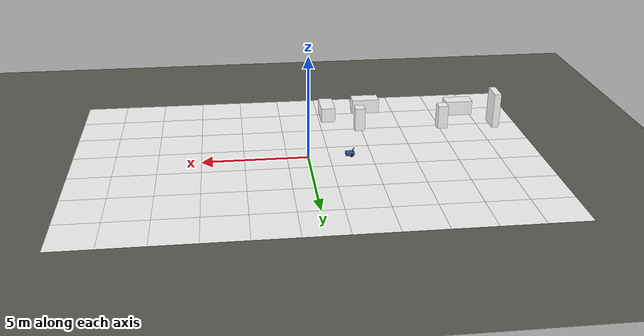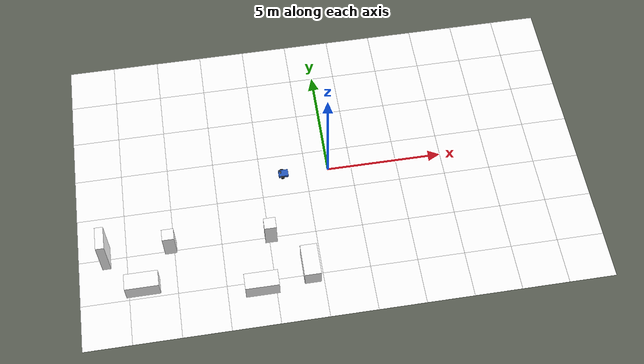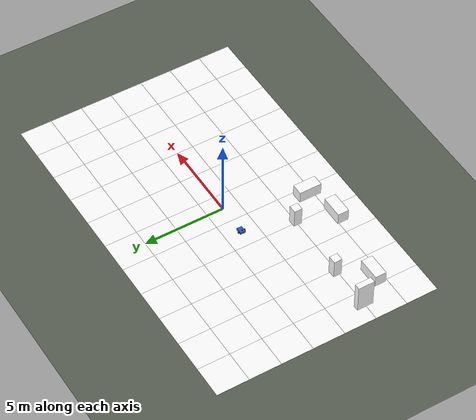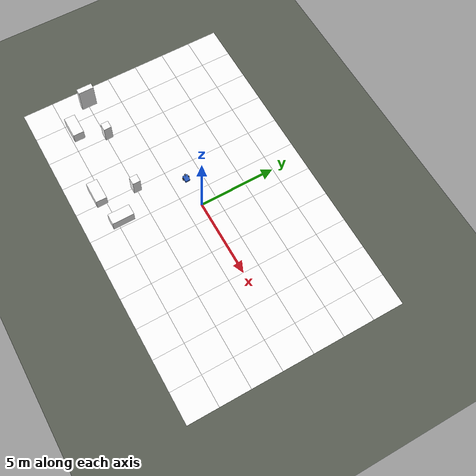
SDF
<sdf version="1.9">
 <world name="office_0">
  <model name="ground_plane">
   <static>true</static>
   <link name="link">
    <collision name="collision">
     <geometry><plane><normal>0 0 1</normal><size>300.000 300.000</size></plane></geometry>
     <surface><friction><ode><mu>1.0</mu><mu2>1.0</mu2></ode></friction></surface>
    </collision>
    <visual name="visual">
     <geometry><plane><normal>0 0 1</normal><size>300.000 300.000</size></plane></geometry>
     <material>
      <ambient>0.350 0.370 0.330 1</ambient>
      <diffuse>0.350 0.370 0.330 1</diffuse>
      <specular>0.08 0.08 0.08 1</specular>
     </material>
    </visual>
   </link>
  </model>
  <model name="floor_1">
   <static>true</static>
   <link name="link">
    <visual name="v0">
     <pose>-10.000 -6.000 0.005 0.0000 0.0000 0.0000</pose>
     <geometry><plane><normal>0 0 1</normal><size>2.000 2.000</size></plane></geometry>
     <material>
      <ambient>1.000 1.000 1.000 1</ambient>
      <diffuse>1.000 1.000 1.000 1</diffuse>
      <specular>0.08 0.08 0.08 1</specular>
      <pbr>
       <metal>
        <albedo_map>model://omnivla_textures/materials/textures/paving.png</albedo_map>
        <roughness>0.95</roughness>
        <metalness>0.0</metalness>
       </metal>
      </pbr>
     </material>
    </visual>
    <visual name="v1">
     <pose>-10.000 -4.000 0.005 0.0000 0.0000 0.0000</pose>
     <geometry><plane><normal>0 0 1</normal><size>2.000 2.000</size></plane></geometry>
     <material>
      <ambient>1.000 1.000 1.000 1</ambient>
      <diffuse>1.000 1.000 1.000 1</diffuse>
      <specular>0.08 0.08 0.08 1</specular>
      <pbr>
       <metal>
        <albedo_map>model://omnivla_textures/materials/textures/paving.png</albedo_map>
        <roughness>0.95</roughness>
        <metalness>0.0</metalness>
       </metal>
      </pbr>
     </material>
    </visual>
    <visual name="v2">
     <pose>-10.000 -2.000 0.005 0.0000 0.0000 0.0000</pose>
     <geometry><plane><normal>0 0 1</normal><size>2.000 2.000</size></plane></geometry>
     <material>
      <ambient>1.000 1.000 1.000 1</ambient>
      <diffuse>1.000 1.000 1.000 1</diffuse>
      <specular>0.08 0.08 0.08 1</specular>
      <pbr>
       <metal>
        <albedo_map>model://omnivla_textures/materials/textures/paving.png</albedo_map>
        <roughness>0.95</roughness>
        <metalness>0.0</metalness>
       </metal>
      </pbr>
     </material>
    </visual>
    <visual name="v3">
     <pose>-10.000 0.000 0.005 0.0000 0.0000 0.0000</pose>
     <geometry><plane><normal>0 0 1</normal><size>2.000 2.000</size></plane></geometry>
     <material>
      <ambient>1.000 1.000 1.000 1</ambient>
      <diffuse>1.000 1.000 1.000 1</diffuse>
      <specular>0.08 0.08 0.08 1</specular>
      <pbr>
       <metal>
        <albedo_map>model://omnivla_textures/materials/textures/tile_floor_dark.png</albedo_map>
        <roughness>0.95</roughness>
        <metalness>0.0</metalness>
       </metal>
      </pbr>
     </material>
    </visual>
    <visual name="v4">
     <pose>-10.000 2.000 0.005 0.0000 0.0000 0.0000</pose>
     <geometry><plane><normal>0 0 1</normal><size>2.000 2.000</size></plane></geometry>
     <material>
      <ambient>1.000 1.000 1.000 1</ambient>
      <diffuse>1.000 1.000 1.000 1</diffuse>
      <specular>0.08 0.08 0.08 1</specular>
      <pbr>
       <metal>
        <albedo_map>model://omnivla_textures/materials/textures/carpet_blue.png</albedo_map>
        <roughness>0.95</roughness>
        <metalness>0.0</metalness>
       </metal>
      </pbr>
     </material>
    </visual>
    <visual name="v5">
     <pose>-10.000 4.000 0.005 0.0000 0.0000 0.0000</pose>
     <geometry><plane><normal>0 0 1</normal><size>2.000 2.000</size></plane></geometry>
     <material>
      <ambient>1.000 1.000 1.000 1</ambient>
      <diffuse>1.000 1.000 1.000 1</diffuse>
      <specular>0.08 0.08 0.08 1</specular>
      <pbr>
       <metal>
        <albedo_map>model://omnivla_textures/materials/textures/carpet_blue.png</albedo_map>
        <roughness>0.95</roughness>
        <metalness>0.0</metalness>
       </metal>
      </pbr>
     </material>
    </visual>
    <visual name="v6">
     <pose>-10.000 6.000 0.005 0.0000 0.0000 0.0000</pose>
     <geometry><plane><normal>0 0 1</normal><size>2.000 2.000</size></plane></geometry>
     <material>
      <ambient>1.000 1.000 1.000 1</ambient>
      <diffuse>1.000 1.000 1.000 1</diffuse>
      <specular>0.08 0.08 0.08 1</specular>
      <pbr>
       <metal>
        <albedo_map>model://omnivla_textures/materials/textures/carpet_blue.png</albedo_map>
        <roughness>0.95</roughness>
        <metalness>0.0</metalness>
       </metal>
      </pbr>
     </material>
    </visual>
    <visual name="v7">
     <pose>-8.000 -6.000 0.005 0.0000 0.0000 0.0000</pose>
     <geometry><plane><normal>0 0 1</normal><size>2.000 2.000</size></plane></geometry>
     <material>
      <ambient>1.000 1.000 1.000 1</ambient>
      <diffuse>1.000 1.000 1.000 1</diffuse>
      <specular>0.08 0.08 0.08 1</specular>
      <pbr>
       <metal>
        <albedo_map>model://omnivla_textures/materials/textures/paving.png</albedo_map>
        <roughness>0.95</roughness>
        <metalness>0.0</metalness>
       </metal>
      </pbr>
     </material>
    </visual>
    <visual name="v8">
     <pose>-8.000 -4.000 0.005 0.0000 0.0000 0.0000</pose>
     <geometry><plane><normal>0 0 1</normal><size>2.000 2.000</size></plane></geometry>
     <material>
      <ambient>1.000 1.000 1.000 1</ambient>
      <diffuse>1.000 1.000 1.000 1</diffuse>
      <specular>0.08 0.08 0.08 1</specular>
      <pbr>
       <metal>
        <albedo_map>model://omnivla_textures/materials/textures/paving.png</albedo_map>
        <roughness>0.95</roughness>
        <metalness>0.0</metalness>
       </metal>
      </pbr>
     </material>
    </visual>
    <visual name="v9">
     <pose>-8.000 -2.000 0.005 0.0000 0.0000 0.0000</pose>
     <geometry><plane><normal>0 0 1</normal><size>2.000 2.000</size></plane></geometry>
     <material>
      <ambient>1.000 1.000 1.000 1</ambient>
      <diffuse>1.000 1.000 1.000 1</diffuse>
      <specular>0.08 0.08 0.08 1</specular>
      <pbr>
       <metal>
        <albedo_map>model://omnivla_textures/materials/textures/paving.png</albedo_map>
        <roughness>0.95</roughness>
        <metalness>0.0</metalness>
       </metal>
      </pbr>
     </material>
    </visual>
    <visual name="v10">
     <pose>-8.000 0.000 0.005 0.0000 0.0000 0.0000</pose>
     <geometry><plane><normal>0 0 1</normal><size>2.000 2.000</size></plane></geometry>
     <material>
      <ambient>1.000 1.000 1.000 1</ambient>
      <diffuse>1.000 1.000 1.000 1</diffuse>
      <specular>0.08 0.08 0.08 1</specular>
      <pbr>
       <metal>
        <albedo_map>model://omnivla_textures/materials/textures/tile_floor_dark.png</albedo_map>
        <roughness>0.95</roughness>
        <metalness>0.0</metalness>
       </metal>
      </pbr>
     </material>
    </visual>
    <visual name="v11">
     <pose>-8.000 2.000 0.005 0.0000 0.0000 0.0000</pose>
     <geometry><plane><normal>0 0 1</normal><size>2.000 2.000</size></plane></geometry>
     <material>
      <ambient>1.000 1.000 1.000 1</ambient>
      <diffuse>1.000 1.000 1.000 1</diffuse>
      <specular>0.08 0.08 0.08 1</specular>
      <pbr>
       <metal>
        <albedo_map>model://omnivla_textures/materials/textures/carpet_blue.png</albedo_map>
        <roughness>0.95</roughness>
        <metalness>0.0</metalness>
       </metal>
      </pbr>
     </material>
    </visual>
    <visual name="v12">
     <pose>-8.000 4.000 0.005 0.0000 0.0000 0.0000</pose>
     <geometry><plane><normal>0 0 1</normal><size>2.000 2.000</size></plane></geometry>
     <material>
      <ambient>1.000 1.000 1.000 1</ambient>
      <diffuse>1.000 1.000 1.000 1</diffuse>
      <specular>0.08 0.08 0.08 1</specular>
      <pbr>
       <metal>
        <albedo_map>model://omnivla_textures/materials/textures/carpet_blue.png</albedo_map>
        <roughness>0.95</roughness>
        <metalness>0.0</metalness>
       </metal>
      </pbr>
     </material>
    </visual>
    <visual name="v13">
     <pose>-8.000 6.000 0.005 0.0000 0.0000 0.0000</pose>
     <geometry><plane><normal>0 0 1</normal><size>2.000 2.000</size></plane></geometry>
     <material>
      <ambient>1.000 1.000 1.000 1</ambient>
      <diffuse>1.000 1.000 1.000 1</diffuse>
      <specular>0.08 0.08 0.08 1</specular>
      <pbr>
       <metal>
        <albedo_map>model://omnivla_textures/materials/textures/carpet_blue.png</albedo_map>
        <roughness>0.95</roughness>
        <metalness>0.0</metalness>
       </metal>
      </pbr>
     </material>
    </visual>
    <visual name="v14">
     <pose>-6.000 -6.000 0.005 0.0000 0.0000 0.0000</pose>
     <geometry><plane><normal>0 0 1</normal><size>2.000 2.000</size></plane></geometry>
     <material>
      <ambient>1.000 1.000 1.000 1</ambient>
      <diffuse>1.000 1.000 1.000 1</diffuse>
      <specular>0.08 0.08 0.08 1</specular>
      <pbr>
       <metal>
        <albedo_map>model://omnivla_textures/materials/textures/paving.png</albedo_map>
        <roughness>0.95</roughness>
        <metalness>0.0</metalness>
       </metal>
      </pbr>
     </material>
    </visual>
    <visual name="v15">
     <pose>-6.000 -4.000 0.005 0.0000 0.0000 0.0000</pose>
     <geometry><plane><normal>0 0 1</normal><size>2.000 2.000</size></plane></geometry>
     <material>
      <ambient>1.000 1.000 1.000 1</ambient>
      <diffuse>1.000 1.000 1.000 1</diffuse>
      <specular>0.08 0.08 0.08 1</specular>
      <pbr>
       <metal>
        <albedo_map>model://omnivla_textures/materials/textures/paving.png</albedo_map>
        <roughness>0.95</roughness>
        <metalness>0.0</metalness>
       </metal>
      </pbr>
     </material>
    </visual>
    <visual name="v16">
     <pose>-6.000 -2.000 0.005 0.0000 0.0000 0.0000</pose>
     <geometry><plane><normal>0 0 1</normal><size>2.000 2.000</size></plane></geometry>
     <material>
      <ambient>1.000 1.000 1.000 1</ambient>
      <diffuse>1.000 1.000 1.000 1</diffuse>
      <specular>0.08 0.08 0.08 1</specular>
      <pbr>
       <metal>
        <albedo_map>model://omnivla_textures/materials/textures/paving.png</albedo_map>
        <roughness>0.95</roughness>
        <metalness>0.0</metalness>
       </metal>
      </pbr>
     </material>
    </visual>
    <visual name="v17">
     <pose>-6.000 0.000 0.005 0.0000 0.0000 0.0000</pose>
     <geometry><plane><normal>0 0 1</normal><size>2.000 2.000</size></plane></geometry>
     <material>
      <ambient>1.000 1.000 1.000 1</ambient>
      <diffuse>1.000 1.000 1.000 1</diffuse>
      <specular>0.08 0.08 0.08 1</specular>
      <pbr>
       <metal>
        <albedo_map>model://omnivla_textures/materials/textures/tile_floor_dark.png</albedo_map>
        <roughness>0.95</roughness>
        <metalness>0.0</metalness>
       </metal>
      </pbr>
     </material>
    </visual>
    <visual name="v18">
     <pose>-6.000 2.000 0.005 0.0000 0.0000 0.0000</pose>
     <geometry><plane><normal>0 0 1</normal><size>2.000 2.000</size></plane></geometry>
     <material>
      <ambient>1.000 1.000 1.000 1</ambient>
      <diffuse>1.000 1.000 1.000 1</diffuse>
      <specular>0.08 0.08 0.08 1</specular>
      <pbr>
       <metal>
        <albedo_map>model://omnivla_textures/materials/textures/carpet_blue.png</albedo_map>
        <roughness>0.95</roughness>
        <metalness>0.0</metalness>
       </metal>
      </pbr>
     </material>
    </visual>
    <visual name="v19">
     <pose>-6.000 4.000 0.005 0.0000 0.0000 0.0000</pose>
     <geometry><plane><normal>0 0 1</normal><size>2.000 2.000</size></plane></geometry>
     <material>
      <ambient>1.000 1.000 1.000 1</ambient>
      <diffuse>1.000 1.000 1.000 1</diffuse>
      <specular>0.08 0.08 0.08 1</specular>
      <pbr>
       <metal>
        <albedo_map>model://omnivla_textures/materials/textures/carpet_blue.png</albedo_map>
        <roughness>0.95</roughness>
        <metalness>0.0</metalness>
       </metal>
      </pbr>
     </material>
    </visual>
    <visual name="v20">
     <pose>-6.000 6.000 0.005 0.0000 0.0000 0.0000</pose>
     <geometry><plane><normal>0 0 1</normal><size>2.000 2.000</size></plane></geometry>
     <material>
      <ambient>1.000 1.000 1.000 1</ambient>
      <diffuse>1.000 1.000 1.000 1</diffuse>
      <specular>0.08 0.08 0.08 1</specular>
      <pbr>
       <metal>
        <albedo_map>model://omnivla_textures/materials/textures/carpet_blue.png</albedo_map>
        <roughness>0.95</roughness>
        <metalness>0.0</metalness>
       </metal>
      </pbr>
     </material>
    </visual>
    <visual name="v21">
     <pose>-4.000 -6.000 0.005 0.0000 0.0000 0.0000</pose>
     <geometry><plane><normal>0 0 1</normal><size>2.000 2.000</size></plane></geometry>
     <material>
      <ambient>1.000 1.000 1.000 1</ambient>
      <diffuse>1.000 1.000 1.000 1</diffuse>
      <specular>0.08 0.08 0.08 1</specular>
      <pbr>
       <metal>
        <albedo_map>model://omnivla_textures/materials/textures/carpet_red.png</albedo_map>
        <roughness>0.95</roughness>
        <metalness>0.0</metalness>
       </metal>
      </pbr>
     </material>
    </visual>
    <visual name="v22">
     <pose>-4.000 -4.000 0.005 0.0000 0.0000 0.0000</pose>
     <geometry><plane><normal>0 0 1</normal><size>2.000 2.000</size></plane></geometry>
     <material>
      <ambient>1.000 1.000 1.000 1</ambient>
      <diffuse>1.000 1.000 1.000 1</diffuse>
      <specular>0.08 0.08 0.08 1</specular>
      <pbr>
       <metal>
        <albedo_map>model://omnivla_textures/materials/textures/carpet_red.png</albedo_map>
        <roughness>0.95</roughness>
        <metalness>0.0</metalness>
       </metal>
      </pbr>
     </material>
    </visual>
    <visual name="v23">
     <pose>-4.000 -2.000 0.005 0.0000 0.0000 0.0000</pose>
     <geometry><plane><normal>0 0 1</normal><size>2.000 2.000</size></plane></geometry>
     <material>
      <ambient>1.000 1.000 1.000 1</ambient>
      <diffuse>1.000 1.000 1.000 1</diffuse>
      <specular>0.08 0.08 0.08 1</specular>
      <pbr>
       <metal>
        <albedo_map>model://omnivla_textures/materials/textures/carpet_red.png</albedo_map>
        <roughness>0.95</roughness>
        <metalness>0.0</metalness>
       </metal>
      </pbr>
     </material>
    </visual>
    <visual name="v24">
     <pose>-4.000 0.000 0.005 0.0000 0.0000 0.0000</pose>
     <geometry><plane><normal>0 0 1</normal><size>2.000 2.000</size></plane></geometry>
     <material>
      <ambient>1.000 1.000 1.000 1</ambient>
      <diffuse>1.000 1.000 1.000 1</diffuse>
      <specular>0.08 0.08 0.08 1</specular>
      <pbr>
       <metal>
        <albedo_map>model://omnivla_textures/materials/textures/tile_floor_dark.png</albedo_map>
        <roughness>0.95</roughness>
        <metalness>0.0</metalness>
       </metal>
      </pbr>
     </material>
    </visual>
    <visual name="v25">
     <pose>-4.000 2.000 0.005 0.0000 0.0000 0.0000</pose>
     <geometry><plane><normal>0 0 1</normal><size>2.000 2.000</size></plane></geometry>
     <material>
      <ambient>1.000 1.000 1.000 1</ambient>
      <diffuse>1.000 1.000 1.000 1</diffuse>
      <specular>0.08 0.08 0.08 1</specular>
      <pbr>
       <metal>
        <albedo_map>model://omnivla_textures/materials/textures/carpet_blue.png</albedo_map>
        <roughness>0.95</roughness>
        <metalness>0.0</metalness>
       </metal>
      </pbr>
     </material>
    </visual>
    <visual name="v26">
     <pose>-4.000 4.000 0.005 0.0000 0.0000 0.0000</pose>
     <geometry><plane><normal>0 0 1</normal><size>2.000 2.000</size></plane></geometry>
     <material>
      <ambient>1.000 1.000 1.000 1</ambient>
      <diffuse>1.000 1.000 1.000 1</diffuse>
      <specular>0.08 0.08 0.08 1</specular>
      <pbr>
       <metal>
        <albedo_map>model://omnivla_textures/materials/textures/carpet_blue.png</albedo_map>
        <roughness>0.95</roughness>
        <metalness>0.0</metalness>
       </metal>
      </pbr>
     </material>
    </visual>
    <visual name="v27">
     <pose>-4.000 6.000 0.005 0.0000 0.0000 0.0000</pose>
     <geometry><plane><normal>0 0 1</normal><size>2.000 2.000</size></plane></geometry>
     <material>
      <ambient>1.000 1.000 1.000 1</ambient>
      <diffuse>1.000 1.000 1.000 1</diffuse>
      <specular>0.08 0.08 0.08 1</specular>
      <pbr>
       <metal>
        <albedo_map>model://omnivla_textures/materials/textures/carpet_blue.png</albedo_map>
        <roughness>0.95</roughness>
        <metalness>0.0</metalness>
       </metal>
      </pbr>
     </material>
    </visual>
    <visual name="v28">
     <pose>-2.000 -6.000 0.005 0.0000 0.0000 0.0000</pose>
     <geometry><plane><normal>0 0 1</normal><size>2.000 2.000</size></plane></geometry>
     <material>
      <ambient>1.000 1.000 1.000 1</ambient>
      <diffuse>1.000 1.000 1.000 1</diffuse>
      <specular>0.08 0.08 0.08 1</specular>
      <pbr>
       <metal>
        <albedo_map>model://omnivla_textures/materials/textures/carpet_red.png</albedo_map>
        <roughness>0.95</roughness>
        <metalness>0.0</metalness>
       </metal>
      </pbr>
     </material>
    </visual>
    <visual name="v29">
     <pose>-2.000 -4.000 0.005 0.0000 0.0000 0.0000</pose>
     <geometry><plane><normal>0 0 1</normal><size>2.000 2.000</size></plane></geometry>
     <material>
      <ambient>1.000 1.000 1.000 1</ambient>
      <diffuse>1.000 1.000 1.000 1</diffuse>
      <specular>0.08 0.08 0.08 1</specular>
      <pbr>
       <metal>
        <albedo_map>model://omnivla_textures/materials/textures/carpet_red.png</albedo_map>
        <roughness>0.95</roughness>
        <metalness>0.0</metalness>
       </metal>
      </pbr>
     </material>
    </visual>
    <visual name="v30">
     <pose>-2.000 -2.000 0.005 0.0000 0.0000 0.0000</pose>
     <geometry><plane><normal>0 0 1</normal><size>2.000 2.000</size></plane></geometry>
     <material>
      <ambient>1.000 1.000 1.000 1</ambient>
      <diffuse>1.000 1.000 1.000 1</diffuse>
      <specular>0.08 0.08 0.08 1</specular>
      <pbr>
       <metal>
        <albedo_map>model://omnivla_textures/materials/textures/carpet_red.png</albedo_map>
        <roughness>0.95</roughness>
        <metalness>0.0</metalness>
       </metal>
      </pbr>
     </material>
    </visual>
    <visual name="v31">
     <pose>-2.000 0.000 0.005 0.0000 0.0000 0.0000</pose>
     <geometry><plane><normal>0 0 1</normal><size>2.000 2.000</size></plane></geometry>
     <material>
      <ambient>1.000 1.000 1.000 1</ambient>
      <diffuse>1.000 1.000 1.000 1</diffuse>
      <specular>0.08 0.08 0.08 1</specular>
      <pbr>
       <metal>
        <albedo_map>model://omnivla_textures/materials/textures/tile_floor_dark.png</albedo_map>
        <roughness>0.95</roughness>
        <metalness>0.0</metalness>
       </metal>
      </pbr>
     </material>
    </visual>
    <visual name="v32">
     <pose>-2.000 2.000 0.005 0.0000 0.0000 0.0000</pose>
     <geometry><plane><normal>0 0 1</normal><size>2.000 2.000</size></plane></geometry>
     <material>
      <ambient>1.000 1.000 1.000 1</ambient>
      <diffuse>1.000 1.000 1.000 1</diffuse>
      <specular>0.08 0.08 0.08 1</specular>
      <pbr>
       <metal>
        <albedo_map>model://omnivla_textures/materials/textures/tile_floor.png</albedo_map>
        <roughness>0.95</roughness>
        <metalness>0.0</metalness>
       </metal>
      </pbr>
     </material>
    </visual>
    <visual name="v33">
     <pose>-2.000 4.000 0.005 0.0000 0.0000 0.0000</pose>
     <geometry><plane><normal>0 0 1</normal><size>2.000 2.000</size></plane></geometry>
     <material>
      <ambient>1.000 1.000 1.000 1</ambient>
      <diffuse>1.000 1.000 1.000 1</diffuse>
      <specular>0.08 0.08 0.08 1</specular>
      <pbr>
       <metal>
        <albedo_map>model://omnivla_textures/materials/textures/tile_floor.png</albedo_map>
        <roughness>0.95</roughness>
        <metalness>0.0</metalness>
       </metal>
      </pbr>
     </material>
    </visual>
    <visual name="v34">
     <pose>-2.000 6.000 0.005 0.0000 0.0000 0.0000</pose>
     <geometry><plane><normal>0 0 1</normal><size>2.000 2.000</size></plane></geometry>
     <material>
      <ambient>1.000 1.000 1.000 1</ambient>
      <diffuse>1.000 1.000 1.000 1</diffuse>
      <specular>0.08 0.08 0.08 1</specular>
      <pbr>
       <metal>
        <albedo_map>model://omnivla_textures/materials/textures/tile_floor.png</albedo_map>
        <roughness>0.95</roughness>
        <metalness>0.0</metalness>
       </metal>
      </pbr>
     </material>
    </visual>
    <visual name="v35">
     <pose>0.000 -6.000 0.005 0.0000 0.0000 0.0000</pose>
     <geometry><plane><normal>0 0 1</normal><size>2.000 2.000</size></plane></geometry>
     <material>
      <ambient>1.000 1.000 1.000 1</ambient>
      <diffuse>1.000 1.000 1.000 1</diffuse>
      <specular>0.08 0.08 0.08 1</specular>
      <pbr>
       <metal>
        <albedo_map>model://omnivla_textures/materials/textures/carpet_red.png</albedo_map>
        <roughness>0.95</roughness>
        <metalness>0.0</metalness>
       </metal>
      </pbr>
     </material>
    </visual>
    <visual name="v36">
     <pose>0.000 -4.000 0.005 0.0000 0.0000 0.0000</pose>
     <geometry><plane><normal>0 0 1</normal><size>2.000 2.000</size></plane></geometry>
     <material>
      <ambient>1.000 1.000 1.000 1</ambient>
      <diffuse>1.000 1.000 1.000 1</diffuse>
      <specular>0.08 0.08 0.08 1</specular>
      <pbr>
       <metal>
        <albedo_map>model://omnivla_textures/materials/textures/carpet_red.png</albedo_map>
        <roughness>0.95</roughness>
        <metalness>0.0</metalness>
       </metal>
      </pbr>
     </material>
    </visual>
    <visual name="v37">
     <pose>0.000 -2.000 0.005 0.0000 0.0000 0.0000</pose>
     <geometry><plane><normal>0 0 1</normal><size>2.000 2.000</size></plane></geometry>
     <material>
      <ambient>1.000 1.000 1.000 1</ambient>
      <diffuse>1.000 1.000 1.000 1</diffuse>
      <specular>0.08 0.08 0.08 1</specular>
      <pbr>
       <metal>
        <albedo_map>model://omnivla_textures/materials/textures/carpet_red.png</albedo_map>
        <roughness>0.95</roughness>
        <metalness>0.0</metalness>
       </metal>
      </pbr>
     </material>
    </visual>
    <visual name="v38">
     <pose>0.000 0.000 0.005 0.0000 0.0000 0.0000</pose>
     <geometry><plane><normal>0 0 1</normal><size>2.000 2.000</size></plane></geometry>
     <material>
      <ambient>1.000 1.000 1.000 1</ambient>
      <diffuse>1.000 1.000 1.000 1</diffuse>
      <specular>0.08 0.08 0.08 1</specular>
      <pbr>
       <metal>
        <albedo_map>model://omnivla_textures/materials/textures/tile_floor_dark.png</albedo_map>
        <roughness>0.95</roughness>
        <metalness>0.0</metalness>
       </metal>
      </pbr>
     </material>
    </visual>
    <visual name="v39">
     <pose>0.000 2.000 0.005 0.0000 0.0000 0.0000</pose>
     <geometry><plane><normal>0 0 1</normal><size>2.000 2.000</size></plane></geometry>
     <material>
      <ambient>1.000 1.000 1.000 1</ambient>
      <diffuse>1.000 1.000 1.000 1</diffuse>
      <specular>0.08 0.08 0.08 1</specular>
      <pbr>
       <metal>
        <albedo_map>model://omnivla_textures/materials/textures/tile_floor.png</albedo_map>
        <roughness>0.95</roughness>
        <metalness>0.0</metalness>
       </metal>
      </pbr>
     </material>
    </visual>
    <visual name="v40">
     <pose>0.000 4.000 0.005 0.0000 0.0000 0.0000</pose>
     <geometry><plane><normal>0 0 1</normal><size>2.000 2.000</size></plane></geometry>
     <material>
      <ambient>1.000 1.000 1.000 1</ambient>
      <diffuse>1.000 1.000 1.000 1</diffuse>
      <specular>0.08 0.08 0.08 1</specular>
      <pbr>
       <metal>
        <albedo_map>model://omnivla_textures/materials/textures/tile_floor.png</albedo_map>
        <roughness>0.95</roughness>
        <metalness>0.0</metalness>
       </metal>
      </pbr>
     </material>
    </visual>
    <visual name="v41">
     <pose>0.000 6.000 0.005 0.0000 0.0000 0.0000</pose>
     <geometry><plane><normal>0 0 1</normal><size>2.000 2.000</size></plane></geometry>
     <material>
      <ambient>1.000 1.000 1.000 1</ambient>
      <diffuse>1.000 1.000 1.000 1</diffuse>
      <specular>0.08 0.08 0.08 1</specular>
      <pbr>
       <metal>
        <albedo_map>model://omnivla_textures/materials/textures/tile_floor.png</albedo_map>
        <roughness>0.95</roughness>
        <metalness>0.0</metalness>
       </metal>
      </pbr>
     </material>
    </visual>
    <visual name="v42">
     <pose>2.000 -6.000 0.005 0.0000 0.0000 0.0000</pose>
     <geometry><plane><normal>0 0 1</normal><size>2.000 2.000</size></plane></geometry>
     <material>
      <ambient>1.000 1.000 1.000 1</ambient>
      <diffuse>1.000 1.000 1.000 1</diffuse>
      <specular>0.08 0.08 0.08 1</specular>
      <pbr>
       <metal>
        <albedo_map>model://omnivla_textures/materials/textures/carpet_red.png</albedo_map>
        <roughness>0.95</roughness>
        <metalness>0.0</metalness>
       </metal>
      </pbr>
     </material>
    </visual>
    <visual name="v43">
     <pose>2.000 -4.000 0.005 0.0000 0.0000 0.0000</pose>
     <geometry><plane><normal>0 0 1</normal><size>2.000 2.000</size></plane></geometry>
     <material>
      <ambient>1.000 1.000 1.000 1</ambient>
      <diffuse>1.000 1.000 1.000 1</diffuse>
      <specular>0.08 0.08 0.08 1</specular>
      <pbr>
       <metal>
        <albedo_map>model://omnivla_textures/materials/textures/carpet_red.png</albedo_map>
        <roughness>0.95</roughness>
        <metalness>0.0</metalness>
       </metal>
      </pbr>
     </material>
    </visual>
    <visual name="v44">
     <pose>2.000 -2.000 0.005 0.0000 0.0000 0.0000</pose>
     <geometry><plane><normal>0 0 1</normal><size>2.000 2.000</size></plane></geometry>
     <material>
      <ambient>1.000 1.000 1.000 1</ambient>
      <diffuse>1.000 1.000 1.000 1</diffuse>
      <specular>0.08 0.08 0.08 1</specular>
      <pbr>
       <metal>
        <albedo_map>model://omnivla_textures/materials/textures/carpet_red.png</albedo_map>
        <roughness>0.95</roughness>
        <metalness>0.0</metalness>
       </metal>
      </pbr>
     </material>
    </visual>
    <visual name="v45">
     <pose>2.000 0.000 0.005 0.0000 0.0000 0.0000</pose>
     <geometry><plane><normal>0 0 1</normal><size>2.000 2.000</size></plane></geometry>
     <material>
      <ambient>1.000 1.000 1.000 1</ambient>
      <diffuse>1.000 1.000 1.000 1</diffuse>
      <specular>0.08 0.08 0.08 1</specular>
      <pbr>
       <metal>
        <albedo_map>model://omnivla_textures/materials/textures/tile_floor_dark.png</albedo_map>
        <roughness>0.95</roughness>
        <metalness>0.0</metalness>
       </metal>
      </pbr>
     </material>
    </visual>
    <visual name="v46">
     <pose>2.000 2.000 0.005 0.0000 0.0000 0.0000</pose>
     <geometry><plane><normal>0 0 1</normal><size>2.000 2.000</size></plane></geometry>
     <material>
      <ambient>1.000 1.000 1.000 1</ambient>
      <diffuse>1.000 1.000 1.000 1</diffuse>
      <specular>0.08 0.08 0.08 1</specular>
      <pbr>
       <metal>
        <albedo_map>model://omnivla_textures/materials/textures/tile_floor.png</albedo_map>
        <roughness>0.95</roughness>
        <metalness>0.0</metalness>
       </metal>
      </pbr>
     </material>
    </visual>
    <visual name="v47">
     <pose>2.000 4.000 0.005 0.0000 0.0000 0.0000</pose>
     <geometry><plane><normal>0 0 1</normal><size>2.000 2.000</size></plane></geometry>
     <material>
      <ambient>1.000 1.000 1.000 1</ambient>
      <diffuse>1.000 1.000 1.000 1</diffuse>
      <specular>0.08 0.08 0.08 1</specular>
      <pbr>
       <metal>
        <albedo_map>model://omnivla_textures/materials/textures/tile_floor.png</albedo_map>
        <roughness>0.95</roughness>
        <metalness>0.0</metalness>
       </metal>
      </pbr>
     </material>
    </visual>
    <visual name="v48">
     <pose>2.000 6.000 0.005 0.0000 0.0000 0.0000</pose>
     <geometry><plane><normal>0 0 1</normal><size>2.000 2.000</size></plane></geometry>
     <material>
      <ambient>1.000 1.000 1.000 1</ambient>
      <diffuse>1.000 1.000 1.000 1</diffuse>
      <specular>0.08 0.08 0.08 1</specular>
      <pbr>
       <metal>
        <albedo_map>model://omnivla_textures/materials/textures/tile_floor.png</albedo_map>
        <roughness>0.95</roughness>
        <metalness>0.0</metalness>
       </metal>
      </pbr>
     </material>
    </visual>
    <visual name="v49">
     <pose>4.000 -6.000 0.005 0.0000 0.0000 0.0000</pose>
     <geometry><plane><normal>0 0 1</normal><size>2.000 2.000</size></plane></geometry>
     <material>
      <ambient>1.000 1.000 1.000 1</ambient>
      <diffuse>1.000 1.000 1.000 1</diffuse>
      <specular>0.08 0.08 0.08 1</specular>
      <pbr>
       <metal>
        <albedo_map>model://omnivla_textures/materials/textures/carpet_red.png</albedo_map>
        <roughness>0.95</roughness>
        <metalness>0.0</metalness>
       </metal>
      </pbr>
     </material>
    </visual>
    <visual name="v50">
     <pose>4.000 -4.000 0.005 0.0000 0.0000 0.0000</pose>
     <geometry><plane><normal>0 0 1</normal><size>2.000 2.000</size></plane></geometry>
     <material>
      <ambient>1.000 1.000 1.000 1</ambient>
      <diffuse>1.000 1.000 1.000 1</diffuse>
      <specular>0.08 0.08 0.08 1</specular>
      <pbr>
       <metal>
        <albedo_map>model://omnivla_textures/materials/textures/carpet_red.png</albedo_map>
        <roughness>0.95</roughness>
        <metalness>0.0</metalness>
       </metal>
      </pbr>
     </material>
    </visual>
    <visual name="v51">
     <pose>4.000 -2.000 0.005 0.0000 0.0000 0.0000</pose>
     <geometry><plane><normal>0 0 1</normal><size>2.000 2.000</size></plane></geometry>
     <material>
      <ambient>1.000 1.000 1.000 1</ambient>
      <diffuse>1.000 1.000 1.000 1</diffuse>
      <specular>0.08 0.08 0.08 1</specular>
      <pbr>
       <metal>
        <albedo_map>model://omnivla_textures/materials/textures/carpet_red.png</albedo_map>
        <roughness>0.95</roughness>
        <metalness>0.0</metalness>
       </metal>
      </pbr>
     </material>
    </visual>
    <visual name="v52">
     <pose>4.000 0.000 0.005 0.0000 0.0000 0.0000</pose>
     <geometry><plane><normal>0 0 1</normal><size>2.000 2.000</size></plane></geometry>
     <material>
      <ambient>1.000 1.000 1.000 1</ambient>
      <diffuse>1.000 1.000 1.000 1</diffuse>
      <specular>0.08 0.08 0.08 1</specular>
      <pbr>
       <metal>
        <albedo_map>model://omnivla_textures/materials/textures/tile_floor_dark.png</albedo_map>
        <roughness>0.95</roughness>
        <metalness>0.0</metalness>
       </metal>
      </pbr>
     </material>
    </visual>
    <visual name="v53">
     <pose>4.000 2.000 0.005 0.0000 0.0000 0.0000</pose>
     <geometry><plane><normal>0 0 1</normal><size>2.000 2.000</size></plane></geometry>
     <material>
      <ambient>1.000 1.000 1.000 1</ambient>
      <diffuse>1.000 1.000 1.000 1</diffuse>
      <specular>0.08 0.08 0.08 1</specular>
      <pbr>
       <metal>
        <albedo_map>model://omnivla_textures/materials/textures/carpet_red.png</albedo_map>
        <roughness>0.95</roughness>
        <metalness>0.0</metalness>
       </metal>
      </pbr>
     </material>
    </visual>
    <visual name="v54">
     <pose>4.000 4.000 0.005 0.0000 0.0000 0.0000</pose>
     <geometry><plane><normal>0 0 1</normal><size>2.000 2.000</size></plane></geometry>
     <material>
      <ambient>1.000 1.000 1.000 1</ambient>
      <diffuse>1.000 1.000 1.000 1</diffuse>
      <specular>0.08 0.08 0.08 1</specular>
      <pbr>
       <metal>
        <albedo_map>model://omnivla_textures/materials/textures/carpet_red.png</albedo_map>
        <roughness>0.95</roughness>
        <metalness>0.0</metalness>
       </metal>
      </pbr>
     </material>
    </visual>
    <visual name="v55">
     <pose>4.000 6.000 0.005 0.0000 0.0000 0.0000</pose>
     <geometry><plane><normal>0 0 1</normal><size>2.000 2.000</size></plane></geometry>
     <material>
      <ambient>1.000 1.000 1.000 1</ambient>
      <diffuse>1.000 1.000 1.000 1</diffuse>
      <specular>0.08 0.08 0.08 1</specular>
      <pbr>
       <metal>
        <albedo_map>model://omnivla_textures/materials/textures/carpet_red.png</albedo_map>
        <roughness>0.95</roughness>
        <metalness>0.0</metalness>
       </metal>
      </pbr>
     </material>
    </visual>
    <visual name="v56">
     <pose>6.000 -6.000 0.005 0.0000 0.0000 0.0000</pose>
     <geometry><plane><normal>0 0 1</normal><size>2.000 2.000</size></plane></geometry>
     <material>
      <ambient>1.000 1.000 1.000 1</ambient>
      <diffuse>1.000 1.000 1.000 1</diffuse>
      <specular>0.08 0.08 0.08 1</specular>
      <pbr>
       <metal>
        <albedo_map>model://omnivla_textures/materials/textures/carpet_red.png</albedo_map>
        <roughness>0.95</roughness>
        <metalness>0.0</metalness>
       </metal>
      </pbr>
     </material>
    </visual>
    <visual name="v57">
     <pose>6.000 -4.000 0.005 0.0000 0.0000 0.0000</pose>
     <geometry><plane><normal>0 0 1</normal><size>2.000 2.000</size></plane></geometry>
     <material>
      <ambient>1.000 1.000 1.000 1</ambient>
      <diffuse>1.000 1.000 1.000 1</diffuse>
      <specular>0.08 0.08 0.08 1</specular>
      <pbr>
       <metal>
        <albedo_map>model://omnivla_textures/materials/textures/carpet_red.png</albedo_map>
        <roughness>0.95</roughness>
        <metalness>0.0</metalness>
       </metal>
      </pbr>
     </material>
    </visual>
    <visual name="v58">
     <pose>6.000 -2.000 0.005 0.0000 0.0000 0.0000</pose>
     <geometry><plane><normal>0 0 1</normal><size>2.000 2.000</size></plane></geometry>
     <material>
      <ambient>1.000 1.000 1.000 1</ambient>
      <diffuse>1.000 1.000 1.000 1</diffuse>
      <specular>0.08 0.08 0.08 1</specular>
      <pbr>
       <metal>
        <albedo_map>model://omnivla_textures/materials/textures/carpet_red.png</albedo_map>
        <roughness>0.95</roughness>
        <metalness>0.0</metalness>
       </metal>
      </pbr>
     </material>
    </visual>
    <visual name="v59">
     <pose>6.000 0.000 0.005 0.0000 0.0000 0.0000</pose>
     <geometry><plane><normal>0 0 1</normal><size>2.000 2.000</size></plane></geometry>
     <material>
      <ambient>1.000 1.000 1.000 1</ambient>
      <diffuse>1.000 1.000 1.000 1</diffuse>
      <specular>0.08 0.08 0.08 1</specular>
      <pbr>
       <metal>
        <albedo_map>model://omnivla_textures/materials/textures/tile_floor_dark.png</albedo_map>
        <roughness>0.95</roughness>
        <metalness>0.0</metalness>
       </metal>
      </pbr>
     </material>
    </visual>
    <visual name="v60">
     <pose>6.000 2.000 0.005 0.0000 0.0000 0.0000</pose>
     <geometry><plane><normal>0 0 1</normal><size>2.000 2.000</size></plane></geometry>
     <material>
      <ambient>1.000 1.000 1.000 1</ambient>
      <diffuse>1.000 1.000 1.000 1</diffuse>
      <specular>0.08 0.08 0.08 1</specular>
      <pbr>
       <metal>
        <albedo_map>model://omnivla_textures/materials/textures/carpet_red.png</albedo_map>
        <roughness>0.95</roughness>
        <metalness>0.0</metalness>
       </metal>
      </pbr>
     </material>
    </visual>
    <visual name="v61">
     <pose>6.000 4.000 0.005 0.0000 0.0000 0.0000</pose>
     <geometry><plane><normal>0 0 1</normal><size>2.000 2.000</size></plane></geometry>
     <material>
      <ambient>1.000 1.000 1.000 1</ambient>
      <diffuse>1.000 1.000 1.000 1</diffuse>
      <specular>0.08 0.08 0.08 1</specular>
      <pbr>
       <metal>
        <albedo_map>model://omnivla_textures/materials/textures/carpet_red.png</albedo_map>
        <roughness>0.95</roughness>
        <metalness>0.0</metalness>
       </metal>
      </pbr>
     </material>
    </visual>
    <visual name="v62">
     <pose>6.000 6.000 0.005 0.0000 0.0000 0.0000</pose>
     <geometry><plane><normal>0 0 1</normal><size>2.000 2.000</size></plane></geometry>
     <material>
      <ambient>1.000 1.000 1.000 1</ambient>
      <diffuse>1.000 1.000 1.000 1</diffuse>
      <specular>0.08 0.08 0.08 1</specular>
      <pbr>
       <metal>
        <albedo_map>model://omnivla_textures/materials/textures/carpet_red.png</albedo_map>
        <roughness>0.95</roughness>
        <metalness>0.0</metalness>
       </metal>
      </pbr>
     </material>
    </visual>
    <visual name="v63">
     <pose>8.000 -6.000 0.005 0.0000 0.0000 0.0000</pose>
     <geometry><plane><normal>0 0 1</normal><size>2.000 2.000</size></plane></geometry>
     <material>
      <ambient>1.000 1.000 1.000 1</ambient>
      <diffuse>1.000 1.000 1.000 1</diffuse>
      <specular>0.08 0.08 0.08 1</specular>
      <pbr>
       <metal>
        <albedo_map>model://omnivla_textures/materials/textures/carpet_red.png</albedo_map>
        <roughness>0.95</roughness>
        <metalness>0.0</metalness>
       </metal>
      </pbr>
     </material>
    </visual>
    <visual name="v64">
     <pose>8.000 -4.000 0.005 0.0000 0.0000 0.0000</pose>
     <geometry><plane><normal>0 0 1</normal><size>2.000 2.000</size></plane></geometry>
     <material>
      <ambient>1.000 1.000 1.000 1</ambient>
      <diffuse>1.000 1.000 1.000 1</diffuse>
      <specular>0.08 0.08 0.08 1</specular>
      <pbr>
       <metal>
        <albedo_map>model://omnivla_textures/materials/textures/carpet_red.png</albedo_map>
        <roughness>0.95</roughness>
        <metalness>0.0</metalness>
       </metal>
      </pbr>
     </material>
    </visual>
    <visual name="v65">
     <pose>8.000 -2.000 0.005 0.0000 0.0000 0.0000</pose>
     <geometry><plane><normal>0 0 1</normal><size>2.000 2.000</size></plane></geometry>
     <material>
      <ambient>1.000 1.000 1.000 1</ambient>
      <diffuse>1.000 1.000 1.000 1</diffuse>
      <specular>0.08 0.08 0.08 1</specular>
      <pbr>
       <metal>
        <albedo_map>model://omnivla_textures/materials/textures/carpet_red.png</albedo_map>
        <roughness>0.95</roughness>
        <metalness>0.0</metalness>
       </metal>
      </pbr>
     </material>
    </visual>
    <visual name="v66">
     <pose>8.000 0.000 0.005 0.0000 0.0000 0.0000</pose>
     <geometry><plane><normal>0 0 1</normal><size>2.000 2.000</size></plane></geometry>
     <material>
      <ambient>1.000 1.000 1.000 1</ambient>
      <diffuse>1.000 1.000 1.000 1</diffuse>
      <specular>0.08 0.08 0.08 1</specular>
      <pbr>
       <metal>
        <albedo_map>model://omnivla_textures/materials/textures/tile_floor_dark.png</albedo_map>
        <roughness>0.95</roughness>
        <metalness>0.0</metalness>
       </metal>
      </pbr>
     </material>
    </visual>
    <visual name="v67">
     <pose>8.000 2.000 0.005 0.0000 0.0000 0.0000</pose>
     <geometry><plane><normal>0 0 1</normal><size>2.000 2.000</size></plane></geometry>
     <material>
      <ambient>1.000 1.000 1.000 1</ambient>
      <diffuse>1.000 1.000 1.000 1</diffuse>
      <specular>0.08 0.08 0.08 1</specular>
      <pbr>
       <metal>
        <albedo_map>model://omnivla_textures/materials/textures/carpet_red.png</albedo_map>
        <roughness>0.95</roughness>
        <metalness>0.0</metalness>
       </metal>
      </pbr>
     </material>
    </visual>
    <visual name="v68">
     <pose>8.000 4.000 0.005 0.0000 0.0000 0.0000</pose>
     <geometry><plane><normal>0 0 1</normal><size>2.000 2.000</size></plane></geometry>
     <material>
      <ambient>1.000 1.000 1.000 1</ambient>
      <diffuse>1.000 1.000 1.000 1</diffuse>
      <specular>0.08 0.08 0.08 1</specular>
      <pbr>
       <metal>
        <albedo_map>model://omnivla_textures/materials/textures/carpet_red.png</albedo_map>
        <roughness>0.95</roughness>
        <metalness>0.0</metalness>
       </metal>
      </pbr>
     </material>
    </visual>
    <visual name="v69">
     <pose>8.000 6.000 0.005 0.0000 0.0000 0.0000</pose>
     <geometry><plane><normal>0 0 1</normal><size>2.000 2.000</size></plane></geometry>
     <material>
      <ambient>1.000 1.000 1.000 1</ambient>
      <diffuse>1.000 1.000 1.000 1</diffuse>
      <specular>0.08 0.08 0.08 1</specular>
      <pbr>
       <metal>
        <albedo_map>model://omnivla_textures/materials/textures/carpet_red.png</albedo_map>
        <roughness>0.95</roughness>
        <metalness>0.0</metalness>
       </metal>
      </pbr>
     </material>
    </visual>
    <visual name="v70">
     <pose>10.000 -6.000 0.005 0.0000 0.0000 0.0000</pose>
     <geometry><plane><normal>0 0 1</normal><size>2.000 2.000</size></plane></geometry>
     <material>
      <ambient>1.000 1.000 1.000 1</ambient>
      <diffuse>1.000 1.000 1.000 1</diffuse>
      <specular>0.08 0.08 0.08 1</specular>
      <pbr>
       <metal>
        <albedo_map>model://omnivla_textures/materials/textures/carpet_red.png</albedo_map>
        <roughness>0.95</roughness>
        <metalness>0.0</metalness>
       </metal>
      </pbr>
     </material>
    </visual>
    <visual name="v71">
     <pose>10.000 -4.000 0.005 0.0000 0.0000 0.0000</pose>
     <geometry><plane><normal>0 0 1</normal><size>2.000 2.000</size></plane></geometry>
     <material>
      <ambient>1.000 1.000 1.000 1</ambient>
      <diffuse>1.000 1.000 1.000 1</diffuse>
      <specular>0.08 0.08 0.08 1</specular>
      <pbr>
       <metal>
        <albedo_map>model://omnivla_textures/materials/textures/carpet_red.png</albedo_map>
        <roughness>0.95</roughness>
        <metalness>0.0</metalness>
       </metal>
      </pbr>
     </material>
    </visual>
    <visual name="v72">
     <pose>10.000 -2.000 0.005 0.0000 0.0000 0.0000</pose>
     <geometry><plane><normal>0 0 1</normal><size>2.000 2.000</size></plane></geometry>
     <material>
      <ambient>1.000 1.000 1.000 1</ambient>
      <diffuse>1.000 1.000 1.000 1</diffuse>
      <specular>0.08 0.08 0.08 1</specular>
      <pbr>
       <metal>
        <albedo_map>model://omnivla_textures/materials/textures/carpet_red.png</albedo_map>
        <roughness>0.95</roughness>
        <metalness>0.0</metalness>
       </metal>
      </pbr>
     </material>
    </visual>
    <visual name="v73">
     <pose>10.000 0.000 0.005 0.0000 0.0000 0.0000</pose>
     <geometry><plane><normal>0 0 1</normal><size>2.000 2.000</size></plane></geometry>
     <material>
      <ambient>1.000 1.000 1.000 1</ambient>
      <diffuse>1.000 1.000 1.000 1</diffuse>
      <specular>0.08 0.08 0.08 1</specular>
      <pbr>
       <metal>
        <albedo_map>model://omnivla_textures/materials/textures/tile_floor_dark.png</albedo_map>
        <roughness>0.95</roughness>
        <metalness>0.0</metalness>
       </metal>
      </pbr>
     </material>
    </visual>
    <visual name="v74">
     <pose>10.000 2.000 0.005 0.0000 0.0000 0.0000</pose>
     <geometry><plane><normal>0 0 1</normal><size>2.000 2.000</size></plane></geometry>
     <material>
      <ambient>1.000 1.000 1.000 1</ambient>
      <diffuse>1.000 1.000 1.000 1</diffuse>
      <specular>0.08 0.08 0.08 1</specular>
      <pbr>
       <metal>
        <albedo_map>model://omnivla_textures/materials/textures/carpet_red.png</albedo_map>
        <roughness>0.95</roughness>
        <metalness>0.0</metalness>
       </metal>
      </pbr>
     </material>
    </visual>
    <visual name="v75">
     <pose>10.000 4.000 0.005 0.0000 0.0000 0.0000</pose>
     <geometry><plane><normal>0 0 1</normal><size>2.000 2.000</size></plane></geometry>
     <material>
      <ambient>1.000 1.000 1.000 1</ambient>
      <diffuse>1.000 1.000 1.000 1</diffuse>
      <specular>0.08 0.08 0.08 1</specular>
      <pbr>
       <metal>
        <albedo_map>model://omnivla_textures/materials/textures/carpet_red.png</albedo_map>
        <roughness>0.95</roughness>
        <metalness>0.0</metalness>
       </metal>
      </pbr>
     </material>
    </visual>
    <visual name="v76">
     <pose>10.000 6.000 0.005 0.0000 0.0000 0.0000</pose>
     <geometry><plane><normal>0 0 1</normal><size>2.000 2.000</size></plane></geometry>
     <material>
      <ambient>1.000 1.000 1.000 1</ambient>
      <diffuse>1.000 1.000 1.000 1</diffuse>
      <specular>0.08 0.08 0.08 1</specular>
      <pbr>
       <metal>
        <albedo_map>model://omnivla_textures/materials/textures/carpet_red.png</albedo_map>
        <roughness>0.95</roughness>
        <metalness>0.0</metalness>
       </metal>
      </pbr>
     </material>
    </visual>
   </link>
  </model>
  <model name="desk_1209">
   <static>true</static>
   <pose>-8.404 -4.535 0.000 0.0000 0.0000 0.0000</pose>
   <link name="link">
    <collision name="c0">
     <pose>0.000 0.000 0.375 0.0000 0.0000 0.0000</pose>
     <geometry><box><size>1.400 0.700 0.750</size></box></geometry>
    </collision>
    <visual name="v0">
     <pose>0.000 0.000 0.375 0.0000 0.0000 0.0000</pose>
     <geometry><box><size>1.400 0.700 0.750</size></box></geometry>
     <material>
      <ambient>1.000 1.000 1.000 1</ambient>
      <diffuse>1.000 1.000 1.000 1</diffuse>
      <specular>0.08 0.08 0.08 1</specular>
      <pbr>
       <metal>
        <albedo_map>model://omnivla_textures/materials/textures/wood_floor.png</albedo_map>
        <roughness>0.85</roughness>
        <metalness>0.0</metalness>
       </metal>
      </pbr>
     </material>
    </visual>
   </link>
  </model>
  <model name="shelf_1455">
   <static>true</static>
   <pose>-9.842 -2.942 0.000 0.0000 0.0000 1.5708</pose>
   <link name="link">
    <collision name="c0">
     <pose>0.000 0.000 0.900 0.0000 0.0000 0.0000</pose>
     <geometry><box><size>1.000 0.350 1.800</size></box></geometry>
    </collision>
    <visual name="v0">
     <pose>0.000 0.000 0.900 0.0000 0.0000 0.0000</pose>
     <geometry><box><size>1.000 0.350 1.800</size></box></geometry>
     <material>
      <ambient>1.000 1.000 1.000 1</ambient>
      <diffuse>1.000 1.000 1.000 1</diffuse>
      <specular>0.08 0.08 0.08 1</specular>
      <pbr>
       <metal>
        <albedo_map>model://omnivla_textures/materials/textures/bookshelf.png</albedo_map>
        <roughness>0.85</roughness>
        <metalness>0.0</metalness>
       </metal>
      </pbr>
     </material>
    </visual>
   </link>
  </model>
  <model name="cabinet_1637">
   <static>true</static>
   <pose>-7.138 -2.864 0.000 0.0000 0.0000 3.1416</pose>
   <link name="link">
    <collision name="c0">
     <pose>0.000 0.000 0.600 0.0000 0.0000 0.0000</pose>
     <geometry><box><size>0.500 0.500 1.200</size></box></geometry>
    </collision>
    <visual name="v0">
     <pose>0.000 0.000 0.600 0.0000 0.0000 0.0000</pose>
     <geometry><box><size>0.500 0.500 1.200</size></box></geometry>
     <material>
      <ambient>1.000 1.000 1.000 1</ambient>
      <diffuse>1.000 1.000 1.000 1</diffuse>
      <specular>0.08 0.08 0.08 1</specular>
      <pbr>
       <metal>
        <albedo_map>model://omnivla_textures/materials/textures/metal.png</albedo_map>
        <roughness>0.85</roughness>
        <metalness>0.0</metalness>
       </metal>
      </pbr>
     </material>
    </visual>
   </link>
  </model>
  <model name="desk_1844">
   <static>true</static>
   <pose>-1.461 -4.677 0.000 0.0000 0.0000 1.5708</pose>
   <link name="link">
    <collision name="c0">
     <pose>0.000 0.000 0.375 0.0000 0.0000 0.0000</pose>
     <geometry><box><size>1.400 0.700 0.750</size></box></geometry>
    </collision>
    <visual name="v0">
     <pose>0.000 0.000 0.375 0.0000 0.0000 0.0000</pose>
     <geometry><box><size>1.400 0.700 0.750</size></box></geometry>
     <material>
      <ambient>1.000 1.000 1.000 1</ambient>
      <diffuse>1.000 1.000 1.000 1</diffuse>
      <specular>0.08 0.08 0.08 1</specular>
      <pbr>
       <metal>
        <albedo_map>model://omnivla_textures/materials/textures/wood_floor.png</albedo_map>
        <roughness>0.85</roughness>
        <metalness>0.0</metalness>
       </metal>
      </pbr>
     </material>
    </visual>
   </link>
  </model>
  <model name="desk_1846">
   <static>true</static>
   <pose>-3.568 -5.272 0.000 0.0000 0.0000 0.0000</pose>
   <link name="link">
    <collision name="c0">
     <pose>0.000 0.000 0.375 0.0000 0.0000 0.0000</pose>
     <geometry><box><size>1.400 0.700 0.750</size></box></geometry>
    </collision>
    <visual name="v0">
     <pose>0.000 0.000 0.375 0.0000 0.0000 0.0000</pose>
     <geometry><box><size>1.400 0.700 0.750</size></box></geometry>
     <material>
      <ambient>1.000 1.000 1.000 1</ambient>
      <diffuse>1.000 1.000 1.000 1</diffuse>
      <specular>0.08 0.08 0.08 1</specular>
      <pbr>
       <metal>
        <albedo_map>model://omnivla_textures/materials/textures/wood_floor.png</albedo_map>
        <roughness>0.85</roughness>
        <metalness>0.0</metalness>
       </metal>
      </pbr>
     </material>
    </visual>
   </link>
  </model>
  <model name="cabinet_1848">
   <static>true</static>
   <pose>-2.917 -2.984 0.000 0.0000 0.0000 3.1416</pose>
   <link name="link">
    <collision name="c0">
     <pose>0.000 0.000 0.600 0.0000 0.0000 0.0000</pose>
     <geometry><box><size>0.500 0.500 1.200</size></box></geometry>
    </collision>
    <visual name="v0">
     <pose>0.000 0.000 0.600 0.0000 0.0000 0.0000</pose>
     <geometry><box><size>0.500 0.500 1.200</size></box></geometry>
     <material>
      <ambient>1.000 1.000 1.000 1</ambient>
      <diffuse>1.000 1.000 1.000 1</diffuse>
      <specular>0.08 0.08 0.08 1</specular>
      <pbr>
       <metal>
        <albedo_map>model://omnivla_textures/materials/textures/metal.png</albedo_map>
        <roughness>0.85</roughness>
        <metalness>0.0</metalness>
       </metal>
      </pbr>
     </material>
    </visual>
   </link>
  </model>
  <include>
   <uri>model://omnivla_robot</uri>
   <name>omnivla_robot</name>
   <pose>-1.979 0.000 0.020 0.0000 0.0000 3.1416</pose>
  </include>
 </world>
</sdf>
